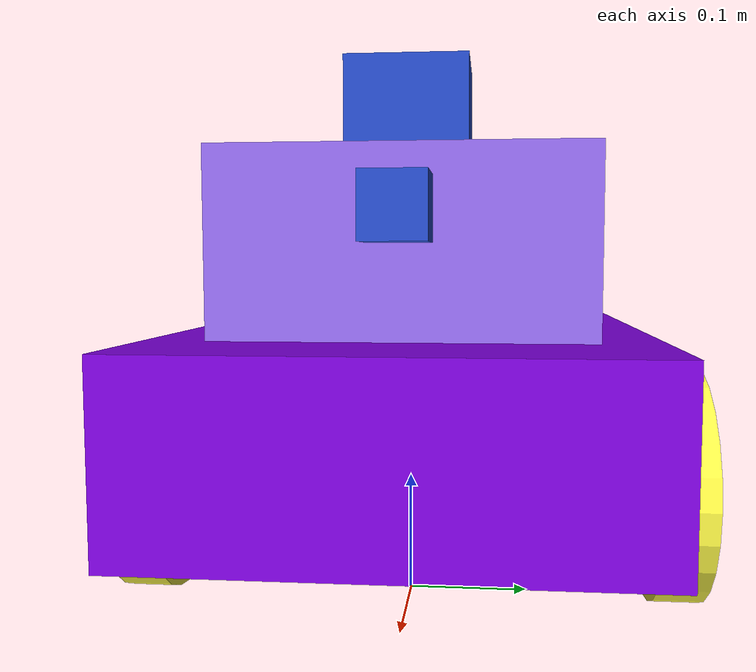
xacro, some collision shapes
<?xml version="1.0"?>
<robot name="robotx" xmlns:xacro="http://www.ros.org/wiki/xacro">

    <xacro:include filename="$(find assignment)/urdf/body.xacro"/>
    <xacro:include filename="$(find assignment)/urdf/lidar.xacro"/>
    <xacro:include filename="$(find assignment)/urdf/wheel.xacro"/>
    <xacro:include filename="$(find assignment)/urdf/camera.xacro"/>
    <xacro:include filename="$(find assignment)/urdf/inertial.xacro"/>
    <xacro:include filename="$(find assignment)/urdf/properties.xacro"/>
    <xacro:include filename="$(find assignment)/urdf/diff_drive.xacro"/>

    <xacro:wheelx
        name="left"
        translation="0 ${WHEEL_SEPARETION/2} 0"
        rotation="0 0 0"
        parent="base_link"/>

    <xacro:wheelx
        name="right"
        translation="0 ${-WHEEL_SEPARETION/2} 0"
        rotation="0 0 0"
        parent="base_link"/>

    <xacro:body/>

     <!--lidar-->

    <xacro:lidarx/>

    <!-- camera -->

    <xacro:cameraX/>

    <!-- controller -->

    <xacro:controller/>

</robot>

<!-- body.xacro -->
<robot name="robot_body" xmlns:xacro="http://www.ros.org/wiki/xacro">

    <!-- set color in RVIZ -->

    <material name="YELLOW_SUPPORT">
        <color rgba="1 0.98 0.278 1"/>
    </material>

    <material name="PURPLE_TOP">
        <color rgba="0.58 0.42 0.94 1"/>
    </material>

    <material name="PURPLE_BASE">
        <color rgba="0.49 0 0.87 1"/>
    </material>

    <xacro:include filename="$(find assignment)/urdf/properties.xacro"/>
    <xacro:include filename="$(find assignment)/urdf/inertial.xacro"/>

    <xacro:macro name="body" params="">

        <!-- Frame attach ground -->

        <link name="base_footprint"/>

        <joint name="base_footprint_to_base_link" type="fixed">
            <parent link="base_footprint"/>
            <child link="base_link"/>
            <origin rpy="0 0 0" xyz ="0 0 0.1"/>
        </joint>

        <!-- Frame attach robot -->

        <link name="base_link">
            <visual>
                <origin rpy="0 0 0" xyz ="-0.1 0 0.05"/>
                <geometry>
                    <box size="0.6 ${WHEEL_SEPARETION-0.04} 0.15"/>
                </geometry>
                <material name="PURPLE_BASE"/>
            </visual>
            <xacro:box_inertia
                x="0.6"
                y="${WHEEL_SEPARETION-0.04}"
                z="0.15"
                m="0.75">
                <origin rpy="0 0 0" xyz ="-0.1 0 0.05"/>
            </xacro:box_inertia>
            <collision>
                <geometry>
                    <box size="0.6 ${WHEEL_SEPARETION-0.04} 0.15"/>
                </geometry>
            </collision>
        </link>

        <gazebo reference="base_link">
            <material>Gazebo/Yellow</material>
        </gazebo>

        <!-- Frame top Body-->

        <joint name="base_link_to_top_body" type="fixed">
            <parent link="base_link"/>
            <child link="top_body"/>
            <origin rpy="0 0 0" xyz ="0 0 0.15"/>
        </joint>

        <!-- mid Body-->

        <link name="top_body">
            <visual>
                <origin rpy="0 0 0" xyz ="-0.1 0 0.05"/>
                <geometry>
                    <box size="0.4 0.3 0.15"/>
                </geometry>
                <material name="PURPLE_TOP"/>
            </visual>
            <xacro:box_inertia
            x="0.4"
            y="0.3"
            z="0.15"
            m="0.5">
            <origin rpy="0 0 0" xyz ="-0.1 0 0.05"/>
        </xacro:box_inertia>
            <collision>
                <geometry>
                    <box size="0.4 0.3 0.15"/>
                </geometry>
            </collision>
        </link>

        <gazebo reference="top_body">
            <material>Gazebo/Purple</material>
        </gazebo>

        <!-- frame support wheel-->

        <joint name="base_footprint_to_support_wheel" type="fixed">
            <parent link="base_footprint"/>
            <child link="support_wheel"/>
            <origin rpy="0 0 0" xyz ="-0.3 0 0.05"/>
        </joint>

        <!-- support wheel-->

        <link name="support_wheel">
            <visual>
                <origin rpy="0 0 0" xyz ="0 0 0"/>
                <geometry>
                    <sphere radius="0.05"/>
                </geometry>
                <material name="YELLOW_SUPPORT"/>
            </visual>
            <xacro:sphere_inertia
                r="0.05"
                m="0.5">
                <origin rpy="0 0 0" xyz ="0 0 0"/>
        </xacro:sphere_inertia>
            <collision>
                <geometry>
                    <sphere radius="0.05"/>
                </geometry>
            </collision>
        </link>

        <!-- Color -->

        <gazebo reference="support_wheel">
            <material>Gazebo/Purple</material>
        </gazebo>

    </xacro:macro>

</robot>

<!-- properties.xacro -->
<robot name="robot" xmlns:xacro="http://www.ros.org/wiki/xacro">

    <xacro:property name="PI" value="3.141592"/>
    <xacro:property name="WHEEL_RADIUS" value="0.1"/>

    <!-- Wheel Properties -->

    <xacro:property name="U_MAX" value="10.0"/>
    <xacro:property name="V_MAX" value="20.0"/>
    <xacro:property name="WHEEL_JOINT_DAMP" value="0.3"/>
    <xacro:property name="WHEEL_SEPARETION" value="0.44"/>

    <!-- lidar Properties -->

    <xacro:property name="laser_size_x" value="0.1"/>
    <xacro:property name="laser_size_y" value="0.1"/>
    <xacro:property name="laser_size_z" value="0.1"/>
    <xacro:property name="laser_origin_x" value="0.0"/>
    <xacro:property name="laser_origin_y" value="0.0"/>
    <xacro:property name="laser_origin_z" value="0.3"/>

    <!-- camera Properties-->

    <xacro:property name="camera_size" value="0.05"/>
    <xacro:property name="camera_origin_x" value="0.125"/>
    <xacro:property name="camera_origin_y" value="0"/>
    <xacro:property name="camera_origin_z" value="0.225"/>

</robot>

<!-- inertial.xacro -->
<robot name="inertialX" xmlns:xacro="http://www.ros.org/wiki/xacro">

    <xacro:include filename="$(find assignment)/urdf/properties.xacro"/>

    <!-- Sphere -->

    <xacro:macro name="sphere_inertia" params="r m *origin">
        <inertial>
            <mass value="${m}"/>
            <xacro:insert_block name="origin"/>
            <inertia ixx="${0.4 * m * r * r}" ixy="0.0" ixz="0.0"
                iyy="${0.4 * m * r * r}" iyz="0.0" izz="${0.4 * m * r * r}" />
        </inertial>
    </xacro:macro>

    <!-- Cylinder -->

    <xacro:macro name="cylinder_inertia" params="r l m *origin">
        <inertial>
            <mass value="${m}"/>
            <xacro:insert_block name="origin"/>
            <inertia ixx="${0.0833 * m * ( 3 * r * r + ( l * l))}" ixy="0.0" ixz="0.0"
                iyy="${0.0833 * m * ( 3 * r * r + (l * l))}" iyz="0.0" izz="${0.5 * m * r * r}" />
        </inertial>
    </xacro:macro>

    <!-- Box -->

    <xacro:macro name="box_inertia" params="x y z m *origin">
        <inertial>
            <mass value="${m}"/>
            <xacro:insert_block name="origin"/>
            <inertia ixx="${0.0833 * m * ( (y * y) + (z * z))}" ixy="0.0" ixz="0.0"
                iyy="${0.0833 * m * ( (x * x) + (z * z))}" iyz="0.0" izz="${0.0833 * m * ( (x * x) + (y * y) )}" />
        </inertial>
    </xacro:macro>

</robot>

<!-- https://en.wikipedia.org/wiki/List_of_moments_of_inertia -->

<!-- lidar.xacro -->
<robot name="lidar_sensor" xmlns:xacro="http://www.ros.org/wiki/xacro">

    <xacro:include filename="$(find assignment)/urdf/properties.xacro"/>

    <xacro:macro name="lidarx" params="">

      <!--Gazebo Hokuyo Laser Plugin-->

      <gazebo reference="sensor_laser">
        <sensor type="gpu_ray" name="head_hokuyo_sensor">
          <pose>0 0 0 0 0 0</pose>
          <visualize>true</visualize>
          <update_rate>40</update_rate>
          <ray>
            <scan>
              <horizontal>
                <samples>720</samples>
                <resolution>1</resolution>
                <min_angle>-3.14</min_angle>
                <max_angle>3.14</max_angle>
              </horizontal>
            </scan>
            <range>
              <min>0.10</min>
              <max>30.0</max>
              <resolution>0.01</resolution>
            </range>
            <noise>
              <type>gaussian</type>
              <mean>0.0</mean>
              <stddev>0.01</stddev>
            </noise>
          </ray>
          <plugin name="gazebo_ros_head_hokuyo_controller" filename="libgazebo_ros_gpu_laser.so">
            <topicName>/mybot/laser_scan</topicName>
            <frameName>sensor_laser</frameName>
          </plugin>
        </sensor>
      </gazebo>

      <!--Laser Scan-->
      <link name="sensor_laser">
        <visual>
          <geometry>
            <mesh filename="package://assignment/urdf/hokuyo.dae"/>
          </geometry>
          <material name="blue"/>
        </visual>
        <collision>
          <geometry>
            <box size="${laser_size_x} ${laser_size_y} ${laser_size_z}"/>
          </geometry>
        </collision>
      </link>

      <!--Joint laser Scan-->

      <joint name="sensor_laser_joint" type="fixed">
        <origin xyz="${laser_origin_x} ${laser_origin_y} ${laser_origin_z}" rpy="0 0 0" />
        <parent link="base_link"/>
        <child link="sensor_laser" />
      </joint>

    </xacro:macro>

</robot>

<!-- https://www.youtube.com/watch?v=UMEE5HYQ8VU -->

<!-- https://bitbucket.org/kiranpalla/learn-ros/src/master/using-gazebo-laser-scan/src/mybot/urdf/ -->

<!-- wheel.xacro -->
<robot name="wheel" xmlns:xacro="http://www.ros.org/wiki/xacro">

    <!-- set color in RVIZ -->

    <material name="YELLOW">
        <color rgba="1 0.98 0.278 1"/>
    </material>

    <!-- Set parameter from properties.xacro -->

    <xacro:include filename="$(find assignment)/urdf/properties.xacro"/>
    <xacro:include filename="$(find assignment)/urdf/inertial.xacro"/>

    <xacro:macro name="wheelx" params="name translation rotation parent">

        <!-- wheel -->

        <link name="${name}_wheel">
            <visual>
                <origin rpy="${PI/2} 0 0" xyz="0 0 0"/>
                <geometry>
                    <cylinder radius="${WHEEL_RADIUS}" length="0.04"/>
                </geometry>
                <material name="YELLOW"/>
            </visual>
            <xacro:cylinder_inertia
                r="0.1"
                l="0.04"
                m="0.4">
            <origin rpy="${PI/2} 0 0" xyz="0 0 0"/>
            </xacro:cylinder_inertia>
            <collision>
                <origin rpy="${PI/2} 0 0" xyz="0 0 0"/>
                <geometry>
                    <cylinder radius="${WHEEL_RADIUS}" length="0.04"/>
                </geometry>
            </collision>
        </link>

        <!-- Color -->

        <gazebo reference="${name}_wheel">
            <material>Gazebo/Purple</material>
        </gazebo>

        <!-- joint wheel-->

        <joint name="${name}_wheel_joint" type="continuous">
            <origin xyz="${translation}" rpy="${rotation}"/>
            <parent link="${parent}"/>
            <child link="${name}_wheel"/>
            <axis xyz="0 1 0"/>
        </joint>

    </xacro:macro>

</robot>

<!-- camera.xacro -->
<robot name="camera_sensor" xmlns:xacro="http://www.ros.org/wiki/xacro">

    <xacro:include filename="$(find assignment)/urdf/properties.xacro"/>

    <xacro:macro name="cameraX" params="">

          <!--Gazebo Camera Plugin-->

        <gazebo reference="camera">
            <sensor type="camera" name="camera">
            <update_rate>30.0</update_rate>
            <camera name="head">
                <horizontal_fov>1.3962634</horizontal_fov>
                <image>
                <width>800</width>
                <height>800</height>
                <format>R8G8B8</format>
                </image>
                <clip>
                <near>0.02</near>
                <far>300</far>
                </clip>
                <noise>
                <type>gaussian</type>
                <mean>0.0</mean>
                <stddev>0.007</stddev>
                </noise>
            </camera>
            <plugin name="camera_controller" filename="libgazebo_ros_camera.so">
                <alwaysOn>true</alwaysOn>
                <updateRate>0.0</updateRate>
                <cameraName>/mybot/camera</cameraName>
                <imageTopicName>image_raw</imageTopicName>
                <cameraInfoTopicName>camera_info</cameraInfoTopicName>
                <frameName>camera</frameName>
                <hackBaseline>0.07</hackBaseline>
                <distortionK1>0.0</distortionK1>
                <distortionK2>0.0</distortionK2>
                <distortionK3>0.0</distortionK3>
                <distortionT1>0.0</distortionT1>
                <distortionT2>0.0</distortionT2>
            </plugin>
            </sensor>

            <material>Gazebo/Red</material>

        </gazebo>

        <!-- Camera link -->

        <link name="camera">
            <visual>
                <geometry>
                    <box size="${camera_size} ${camera_size} ${camera_size}"/>
                </geometry>
                <material name="blue"/>
                </visual>
            <collision>
                <geometry>
                    <box size="${camera_size} ${camera_size} ${camera_size}"/>
                </geometry>
            </collision>
            <inertial>
                <mass value="0.2"/>
                <inertia ixx="1.0" ixy="0.0" ixz="0.0" iyy="1.0" iyz="0.0" izz="1.0"/>
            </inertial>
        </link>

        <!-- Camera joint -->

        <joint name="camera_joint" type="fixed">
            <origin xyz="${camera_origin_x} ${camera_origin_y} ${camera_origin_z}" rpy="0 0 0"/>
            <parent link="base_link"/>
            <child link="camera"/>
        </joint>

    </xacro:macro>

</robot>

<!-- https://www.youtube.com/watch?v=UMEE5HYQ8VU -->
